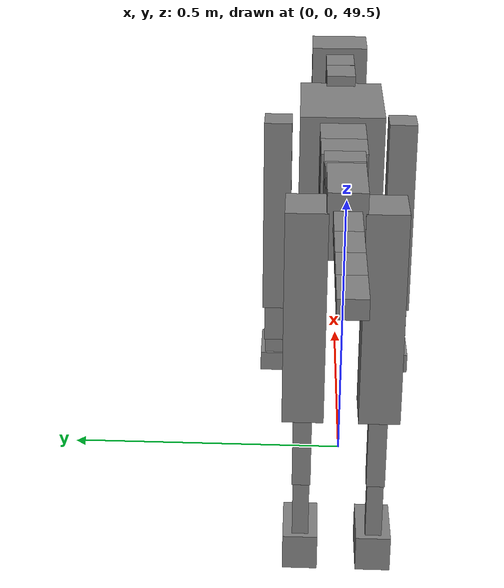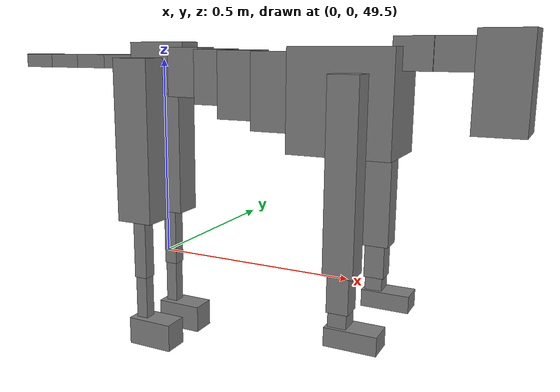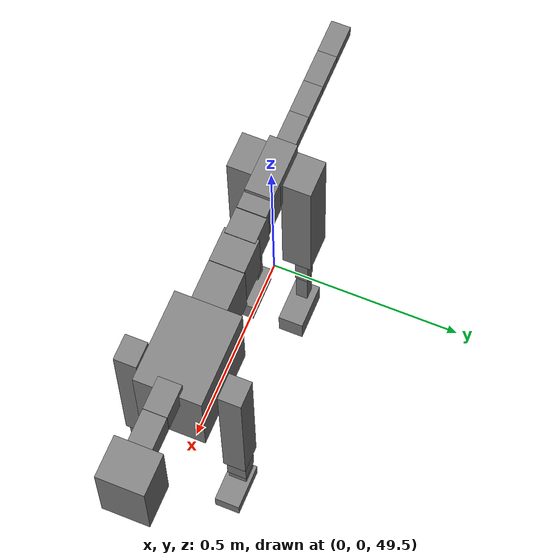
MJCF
<mujoco model="dog">

    <default>
        <joint armature="0.02" stiffness="1" damping="0.2" limited="true"/>
        <geom condim="3" friction="1 0.05 0.05" margin="0.01"/>
        <motor ctrllimited="true" ctrlrange="-1.0 1.0" forcelimited="true" gear="50"/>
    </default>

    <compiler inertiafromgeom="true" angle="radian"/>

    <option timestep="0.016" iterations="50" tolerance="1e-10" solver="Newton" jacobian="dense" cone="pyramidal"/>

    <size nconmax="20000" njmax="60000" nstack="5000000"/>
    <visual>
        <map force="0.1" zfar="30"/>
        <rgba haze="0.15 0.25 0.35 1"/>
        <quality shadowsize="2048"/>
        <global offwidth="800" offheight="800"/>
    </visual>

    <asset>
        <texture type="skybox" builtin="gradient" rgb1="0.3 0.5 0.7" rgb2="0 0 0" width="512" height="512"/>
        <texture name="texplane" type="2d" builtin="checker" rgb1=".2 .3 .4" rgb2=".1 0.15 0.2" width="512" height="512"
                 mark="cross" markrgb=".8 .8 .8"/>
        <texture name="texgeom" type="cube" builtin="flat" mark="cross" width="127" height="1278" rgb1="0.8 0.6 0.4"
                 rgb2="0.8 0.6 0.4" markrgb="1 1 1" random="0.01"/>

        <material name="matplane" reflectance="0.3" texture="texplane" texrepeat="1 1" texuniform="true"/>
        <material name="matgeom" texture="texgeom" texuniform="true" rgba="0.8 0.6 .4 1"/>
    </asset>

    <worldbody>
        <geom name="floor" pos="0 0 0" size="0 0 .25" type="plane" material="matplane" condim="3"/>

        <light directional="false" diffuse=".2 .2 .2" specular="0 0 0" pos="0 0 5" dir="0 0 -1" castshadow="false"/>
        <light mode="targetbodycom" target="torso" directional="false" diffuse=".8 .8 .8" specular="0.3 0.3 0.3"
               pos="0 0 4.0" dir="0 0 -1"/>

        <body name="root" pos="0 0 50">
            <freejoint name="root_1"/>
            <geom type="box" pos="0 0 -0.02" size="0.0774  0.0358  0.063" density="2030"/>

            <body name="spine1" pos="0.054 0 0">
                <joint name="spine1_y" axis="0 1 0" range="0 0.7" limited="true"/>
                <geom type="box" pos="0.02375 0 -0.03" size="0.04375  0.0375  0.05985" density="2030"/>

                <body name="spine2" pos="0.0612 0 0">
                    <joint name="spine2_y" axis="0 1 0" range="-0.15 0.15" limited="true"/>
                    <geom type="box" pos="0.03555  0  -0.04" size="0.04055  0.039  0.06615" density="2030"/>

                    <body name="spine3" pos="0.0730 0 0">
                        <joint name="spine3_y" axis="0 1 0" range="-0.15 0.15" limited="true"/>
                        <geom type="box" pos="0.03555  0  -0.057" size="0.04555  0.0445  0.081" density="2030"/>

                        <body name="spine4" pos="0.0780 0 0">
                            <joint name="spine4_y" axis="0 1 0" range="-0.15 0.15" limited="true"/>
                            <geom type="box" pos="0.05265  0  -0.07" size="0.05265  0.045  0.09135" density="2030"/>

                            <body name="torso" pos="0.1082 0 0">
                                <joint name="torso_y" axis="0 1 0" range="-0.15 0.15" limited="true"/>
                                <geom type="box" pos="0.11925  0  -0.085" size="0.11925  0.085  0.11745"
                                      density="2030"/>

                                <body name="neck1" pos="0.2160  0   0.0180">
                                    <joint name="neck1_y" axis="0 1 0" range="-1.2  -1" limited="true"/>
                                    <geom type="box" pos="0.0423  0  0" size="0.0423  0.03  0.036" density="2325"/>

                                    <body name="neck2" pos="0.0853  0  0">
                                        <joint name="neck2_y" axis="0 1 0" range="0.1  0" limited="true"/>
                                        <geom type="box" pos="0.0423  0  0" size="0.0423  0.03  0.036" density="2325"/>

                                        <body name="head" pos="0.0853  0  0">
                                            <joint name="head_y" axis="0 1 0" range="-0.3  -0.2" limited="true"/>
                                            <geom type="box" pos="0.0531  0  -0.055" size="0.0531  0.06  0.1044"
                                                  density="4030"/>

                                        </body>
                                    </body>
                                </body>

                                <body name="front_shoulder" pos="0.156  0   -0.0480">
                                    <joint name="front_shoulder_y" axis="0 1 0" range="-1 1.5" limited="true"/>
                                    <geom type="box" pos="0 0.13 -0.1843" size="0.0340  0.0291  0.2109" density="1158"/>
                                    <geom type="box" pos="0 -0.13 -0.1843" size="0.0340  0.0291  0.2109"
                                          density="1158"/>

                                    <body name="front_elbow" pos="0  0  -0.3686">
                                        <joint name="front_elbow_y" axis="0 1 0" range="-2 0" limited="true"/>
                                        <geom type="box" pos="0 0.13 -0.0540" size="0.0244  0.0249  0.0540"
                                              density="1081"/>
                                        <geom type="box" pos="0 -0.13 -0.0540" size="0.0244  0.0249  0.0540"
                                              density="1081"/>

                                        <body name="front_wrist" pos="0  0  -0.1080">
                                            <joint name="front_wrist_y" axis="0 1 0" range="-0.2 0" limited="true"/>
                                            <geom type="box" pos="0 0.13 -0.0234" size="0.0209  0.0233  0.0366"
                                                  density="1664"/>
                                            <geom type="box" pos="0 -0.13 -0.0234" size="0.0209  0.0233  0.0366"
                                                  density="1664"/>

                                            <body name="front_finger_end" pos="0  0  -0.0469">
                                                <joint name="front_finger_y" axis="0 1 0" range="-0.4 1"
                                                       limited="true"/>
                                                <geom type="box" pos="0.0320  0.13  -0.0061"
                                                      size="0.0586  0.0320  0.0211" density="1515"/>
                                                <geom type="box" pos="0.0320  -0.13  -0.0061"
                                                      size="0.0586  0.0320  0.0211" density="1515"/>

                                            </body>

                                        </body>
                                    </body>
                                </body>

                            </body>
                        </body>
                    </body>
                </body>
            </body>

            <body name="back_hip" pos="-0.03 0 -0.018">
                <joint name="back_hip_y" axis="0 1 0" range="-1.5 0.3" limited="true"/>
                <geom type="box" pos="0 0.07 -0.1822" size="0.0486  0.0381  0.2050" density="1154"/>
                <geom type="box" pos="0 -0.07 -0.1822" size="0.0486  0.0381  0.2050" density="1154"/>

                <body name="back_knee" pos="0  0  -0.3644">
                    <joint name="back_knee_y" axis="0 1 0" range="0 2.8" limited="true"/>
                    <geom type="box" pos="0 0.07 -0.0795" size="0.0176  0.0174  0.0951" density="1227"/>
                    <geom type="box" pos="0 -0.07 -0.0795" size="0.0176  0.0174  0.0951" density="1227"/>

                    <body name="back_ankle" pos="0  0  -0.1591">
                        <joint name="back_ankle_y" axis="0 1 0" range="-2.2 0" limited="true"/>
                        <geom type="box" pos="0 0.07 -0.0699" size="0.0155  0.0155  0.0812" density="1284"/>
                        <geom type="box" pos="0 -0.07 -0.0699" size="0.0155  0.0155  0.0812" density="1284"/>

                        <body name="back_toe_end" pos="0  0  -0.1399">
                            <joint name="back_toe_y" axis="0 1 0" range="-0.4 1" limited="true"/>
                            <geom type="box" pos="0.0331  0.07  -0.0202" size="0.0607  0.0331  0.0352" density="1515"/>
                            <geom type="box" pos="0.0331  -0.07  -0.0202" size="0.0607  0.0331  0.0352" density="1515"/>

                        </body>
                    </body>
                </body>
            </body>

            <body name="tail1" pos="-0.074 0 -0.006">
                <joint name="tail1_y" axis="0 1 0" range="-0.2 0.2" limited="true"/>
                <geom type="box" pos="-0.0536  0  0" size="0.045  0.025  0.0175" density="1587"/>

                <body name="tail2" pos="-0.09 0 0">
                    <joint name="tail2_y" axis="0 1 0" range="-0.2 0.2" limited="true"/>
                    <geom type="box" pos="-0.0536  0  0" size="0.045  0.025  0.0175" density="1587"/>

                    <body name="tail3" pos="-0.09 0 0">
                        <joint name="tail3_y" axis="0 1 0" range="-0.2 0.2" limited="true"/>
                        <geom type="box" pos="-0.0536  0  0" size="0.045  0.025  0.0175" density="1587"/>

                        <body name="tail4" pos="-0.09 0 0">
                            <joint name="tail4_y" axis="0 1 0" range="-0.2 0.2" limited="true"/>
                            <geom type="box" pos="-0.0536  0  0" size="0.045  0.025  0.0175" density="1587"/>

                        </body>
                    </body>
                </body>
            </body>
        </body>
    </worldbody>

    <actuator>
        <motor joint="spine1_y" forcerange="-150 150     "/>
        <motor joint="spine2_y" forcerange="-150 150     "/>
        <motor joint="spine3_y" forcerange="-150 150     "/>
        <motor joint="spine4_y" forcerange="-150 150     "/>
        <motor joint="torso_y" forcerange="-150 150     "/>
        <motor joint="neck1_y" forcerange="-100 100       "/>
        <motor joint="neck2_y" forcerange="-100 100       "/>
        <motor joint="head_y" forcerange="-150 150       "/>
        <motor joint="front_shoulder_y" forcerange="-125.58 168.38"/>
        <motor joint="front_elbow_y" forcerange="-136.56 144.67"/>
        <motor joint="front_wrist_y" forcerange="-128.02 58.20"/>
        <motor joint="front_finger_y" forcerange="-80.31 50.20"/>
        <motor joint="back_hip_y" forcerange="-307.93 399.82"/>
        <motor joint="back_knee_y" forcerange="-235.66 217.35"/>
        <motor joint="back_angle_y" forcerange="-76.24 72.39"/>
        <motor joint="back_toe_y" forcerange="-67.34 117.72"/>
        <motor joint="tail1_y" forcerange="-50 50     "/>
        <motor joint="tail2_y" forcerange="-50 50     "/>
        <motor joint="tail3_y" forcerange="-50 50     "/>
        <motor joint="tail4_y" forcerange="-50 50     "/>
    </actuator>
</mujoco>
